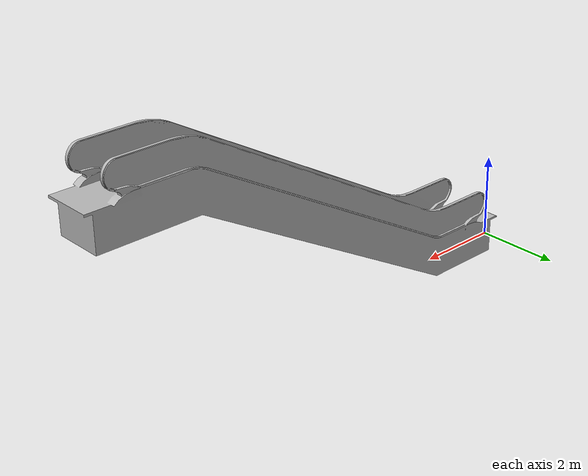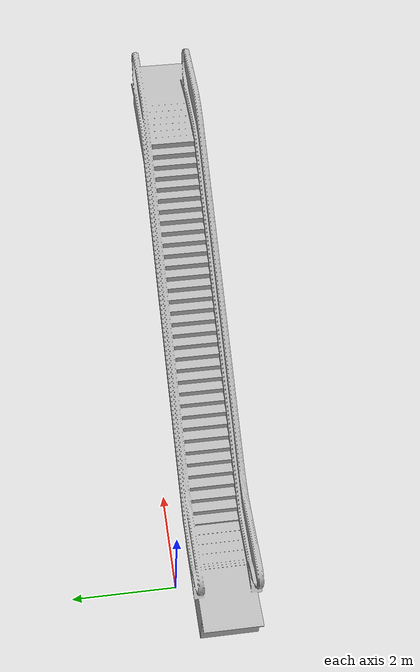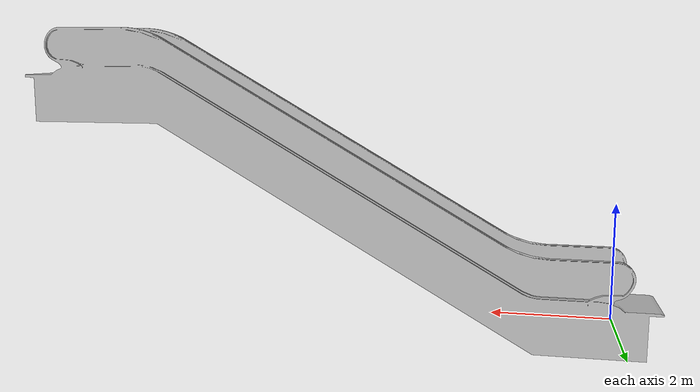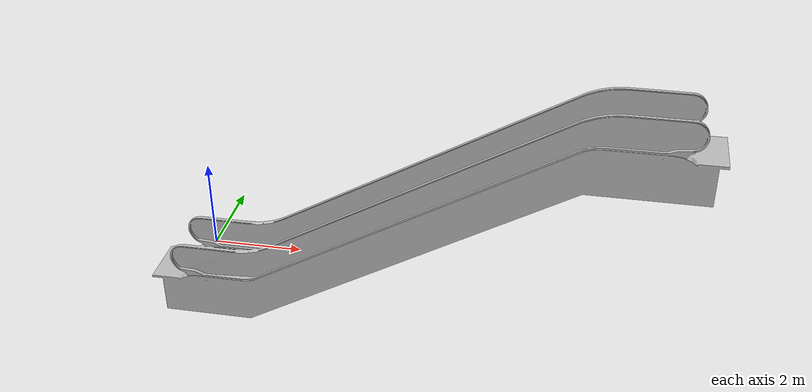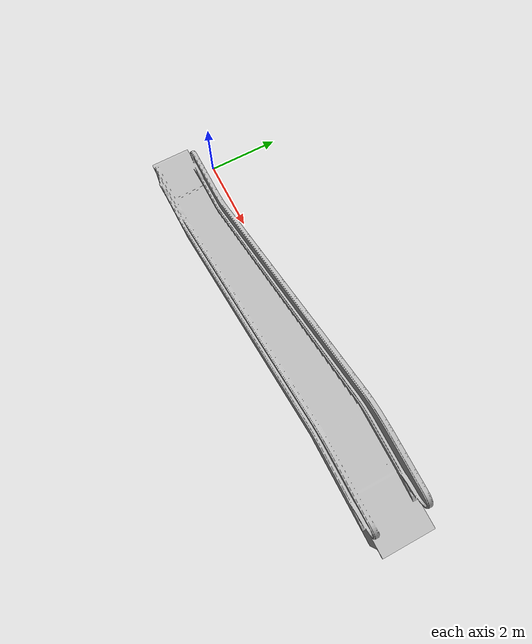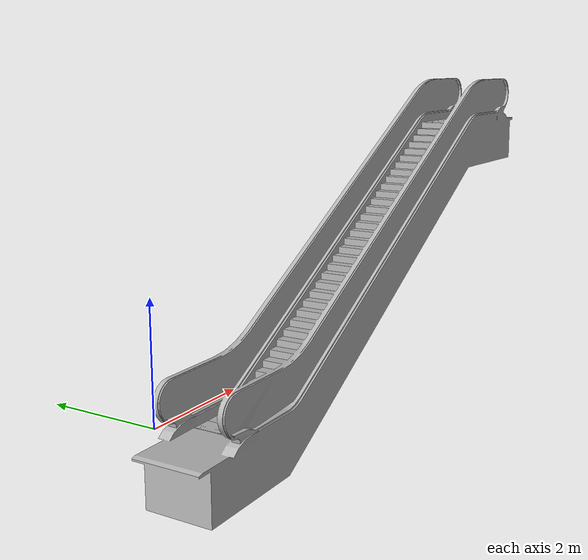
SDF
<?xml version="1.0" ?>
<sdf version="1.4">
	<model name="escalator">
		<static>true</static>
		<link name="link">
			<pose>0 0 0 1.5708 0 -0.9599</pose>
			<collision name="collision">
				<geometry>
					<mesh>
						<uri>model://escalator/mesh/escalator.dae</uri>
						<scale>0.030 0.030 0.030</scale>
					</mesh>
				</geometry>
				<surface>
					<bounce>
						<restitution_coefficient>0.01</restitution_coefficient>
						<threshold>5.0</threshold>
					</bounce>
					<friction>
						<ode>
							<mu>10</mu>
							<mu2>10</mu2>
						</ode>
					</friction>
					<contact>
						<ode>
							<soft_cfm>0.001</soft_cfm>
							<kp>100000.0</kp>
							<kd>1000.0</kd>
						</ode>
					</contact>
				</surface>
			</collision>
			<visual name="visual">
				<geometry>
					<mesh>
						<uri>model://escalator/mesh/escalator.dae</uri>
						<scale>0.030 0.030 0.030</scale>
					</mesh>
				</geometry>
			</visual>
		</link>
	</model>
</sdf>
